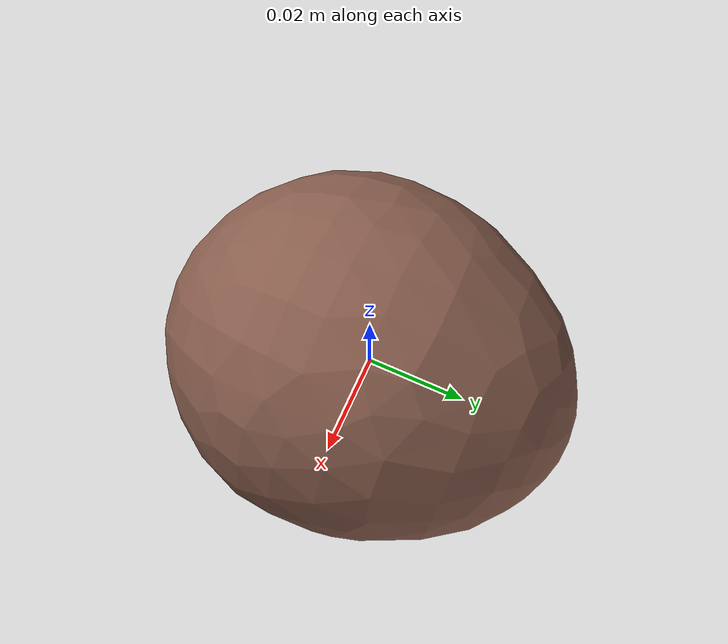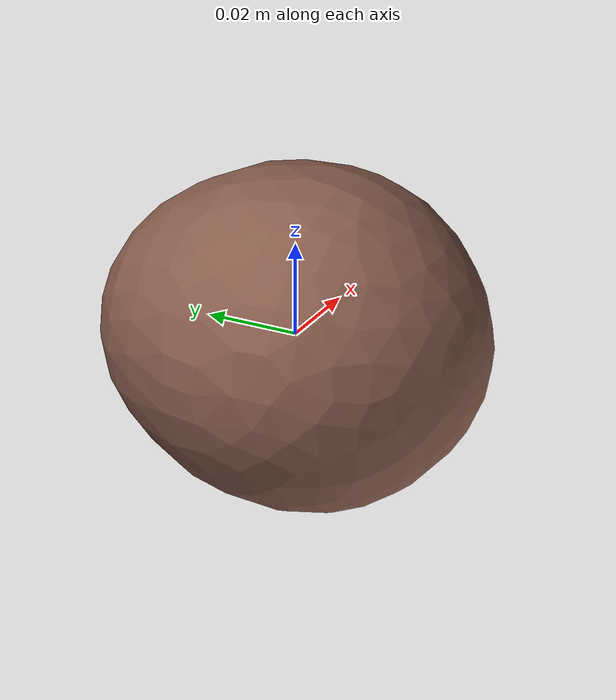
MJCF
<mujoco model="Egg_10">
  <compiler autolimits="true" boundmass="0.01" angle="radian"/>
  <default>
    <default class="/">
      <default class="__VISUAL_MJT__">
        <geom contype="0" conaffinity="0" group="0"/>
      </default>
      <default class="__STRUCTURAL_MJT__">
        <geom contype="8" conaffinity="15" group="4" friction="0.90000000000000002 0.90000000000000002 0.001" solref="0.025000000000000001 1" solimp="0.998 0.998 0.001"/>
      </default>
      <default class="__DYNAMIC_MJT__">
        <geom contype="1" conaffinity="15" group="4" friction="0.90000000000000002 0.90000000000000002 0.001" solref="0.025000000000000001 1" solimp="0.998 0.998 0.001"/>
      </default>
    </default>
  </default>
  <asset>
    <material name="material_Egg4_Mat" class="/" specular="0.5" shininess="0.5" rgba="0.53676469999999998 0.36726049999999999 0.3039036 1"/>
    <mesh name="Egg_10_egg_10" class="/" file="Egg_10_egg_10/Egg_10_egg_10.obj" scale="1 1 1"/>
  </asset>
  <worldbody>
    <body name="Egg_10">
      <joint name="Egg_10_free" class="/" type="free" pos="0 0 0" axis="0 0 1" stiffness="0" range="0 0" armature="0" damping="0.10000000000000001" frictionloss="0"/>
      <body name="Egg_10_egg_10" pos="-0 -0.00036000000000000002 0" quat="1 0 0 0">
        <geom name="Egg_10_egg_10" class="__VISUAL_MJT__" type="mesh" material="material_Egg4_Mat" shellinertia="true" mesh="Egg_10_egg_10"/>
        <geom name="Egg_10_PrimitiveCollider_0" class="__DYNAMIC_MJT__" type="capsule" size="0.033183742314577103 0.0078468397259712219" rgba="0 1 0 1" pos="-0 0 0" quat="0.70710678118654757 0.70710678118654746 0 0"/>
      </body>
    </body>
  </worldbody>
</mujoco>
